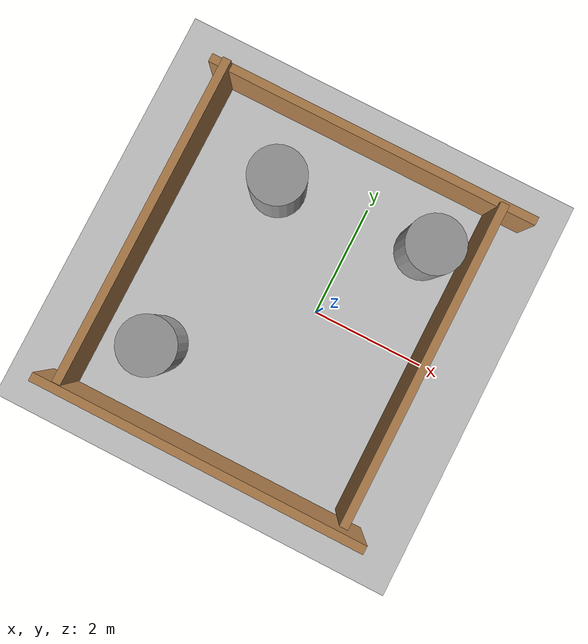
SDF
<sdf version="1.6">
 <world name="default">
  <light name="sun" type="directional">
   <pose>0 0 10 0 -0 0</pose>
   <diffuse>0.8 0.8 0.8 1</diffuse>
   <specular>0.2 0.2 0.2 1</specular>
   <attenuation>
    <range>1000</range>
    <constant>0.9</constant>
    <linear>0.01</linear>
    <quadratic>0.001</quadratic>
   </attenuation>
   <direction>0.5 0.1 -0.9</direction>
  </light>
  <model name="ground_plane">
   <static>1</static>
   <link name="link">
    <collision name="collision">
     <geometry><plane><normal>0 0 1</normal><size>100 100</size></plane></geometry>
     <surface><friction><ode><mu>100</mu><mu2>50</mu2></ode></friction></surface>
    </collision>
    <visual name="visual">
     <cast_shadows>0</cast_shadows>
     <geometry><plane><normal>0 0 1</normal><size>100 100</size></plane></geometry>
     <material>
      <script><uri>file://media/materials/scripts/gazebo.material</uri><name>Gazebo/Grey</name></script>
     </material>
    </visual>
    <velocity_decay><linear>0</linear><angular>0</angular></velocity_decay>
   </link>
  </model>
  <physics name="default_physics" default="0" type="ode">
   <max_step_size>0.01</max_step_size>
   <real_time_factor>1</real_time_factor>
   <real_time_update_rate>100</real_time_update_rate>
  </physics>
  <scene><ambient>0.4 0.4 0.4 1</ambient><background>0.7 0.7 0.7 1</background><shadows>1</shadows></scene>
  <gravity>0 0 -9.8</gravity>
  <magnetic_field>6e-06 2.3e-05 -4.2e-05</magnetic_field>
  <atmosphere type="adiabatic"/>
  <spherical_coordinates>
   <surface_model>EARTH_WGS84</surface_model>
   <latitude_deg>0</latitude_deg>
   <longitude_deg>0</longitude_deg>
   <elevation>0</elevation>
   <heading_deg>0</heading_deg>
  </spherical_coordinates>
  <model name="turtlebot3_square_1">
   <link name="Wall_0">
    <pose>-0.451745 2.8847 0 0 -0 0</pose>
    <inertial>
     <inertia><ixx>nan</ixx><ixy>0</ixy><ixz>0</ixz><iyy>nan</iyy><iyz>0</iyz><izz>nan</izz></inertia>
     <mass>0</mass>
    </inertial>
    <visual name="Wall_0_Visual">
     <pose>0 0 0.25 0 -0 0</pose>
     <geometry><box><size>5.97083 0.15 0.990577</size></box></geometry>
     <material>
      <script><uri>file://media/materials/scripts/gazebo.material</uri><name>Gazebo/Wood</name></script>
      <ambient>1 1 1 1</ambient>
      <diffuse>1 1 1 1</diffuse>
      <specular>0.2 0.2 0.2 1</specular>
      <emissive>0 0 0 1</emissive>
     </material>
    </visual>
    <collision name="Wall_0_Collision">
     <pose>0 0 0.25 0 -0 0</pose>
     <geometry><box><size>5.97083 0.15 0.990577</size></box></geometry>
     <surface>
      <friction>
       <ode><mu>1</mu><mu2>1</mu2><fdir1>0 0 0</fdir1><slip1>0</slip1><slip2>0</slip2></ode>
       <torsional>
        <coefficient>1</coefficient>
        <patch_radius>0</patch_radius>
        <surface_radius>0</surface_radius>
        <use_patch_radius>1</use_patch_radius>
        <ode><slip>0</slip></ode>
       </torsional>
      </friction>
      <bounce><restitution_coefficient>0</restitution_coefficient><threshold>1e+06</threshold></bounce>
      <contact>
       <collide_without_contact>0</collide_without_contact>
       <collide_without_contact_bitmask>1</collide_without_contact_bitmask>
       <collide_bitmask>1</collide_bitmask>
       <ode>
        <soft_cfm>0</soft_cfm>
        <soft_erp>0.2</soft_erp>
        <kp>1e+13</kp>
        <kd>1</kd>
        <max_vel>0.01</max_vel>
        <min_depth>0</min_depth>
       </ode>
       <bullet>
        <split_impulse>1</split_impulse>
        <split_impulse_penetration_threshold>-0.01</split_impulse_penetration_threshold>
        <soft_cfm>0</soft_cfm>
        <soft_erp>0.2</soft_erp>
        <kp>1e+13</kp>
        <kd>1</kd>
       </bullet>
      </contact>
     </surface>
    </collision>
   </link>
   <link name="Wall_2">
    <pose>-3.1364 4e-06 0.151186 0 0 -1.5708</pose>
    <inertial>
     <inertia><ixx>nan</ixx><ixy>0</ixy><ixz>0</ixz><iyy>nan</iyy><iyz>0</iyz><izz>nan</izz></inertia>
     <mass>0</mass>
    </inertial>
    <visual name="Wall_2_Visual">
     <pose>0 0 0.25 0 -0 0</pose>
     <geometry><box><size>5.87292 0.15 0.977738</size></box></geometry>
     <material>
      <script><uri>file://media/materials/scripts/gazebo.material</uri><name>Gazebo/Wood</name></script>
      <ambient>1 1 1 1</ambient>
      <diffuse>1 1 1 1</diffuse>
      <specular>0.2 0.2 0.2 1</specular>
      <emissive>0 0 0 1</emissive>
     </material>
    </visual>
    <collision name="Wall_2_Collision">
     <pose>0 0 0.25 0 -0 0</pose>
     <geometry><box><size>5.87292 0.15 0.977738</size></box></geometry>
     <surface>
      <friction>
       <ode><mu>1</mu><mu2>1</mu2><fdir1>0 0 0</fdir1><slip1>0</slip1><slip2>0</slip2></ode>
       <torsional>
        <coefficient>1</coefficient>
        <patch_radius>0</patch_radius>
        <surface_radius>0</surface_radius>
        <use_patch_radius>1</use_patch_radius>
        <ode><slip>0</slip></ode>
       </torsional>
      </friction>
      <bounce><restitution_coefficient>0</restitution_coefficient><threshold>1e+06</threshold></bounce>
      <contact>
       <collide_without_contact>0</collide_without_contact>
       <collide_without_contact_bitmask>1</collide_without_contact_bitmask>
       <collide_bitmask>1</collide_bitmask>
       <ode>
        <soft_cfm>0</soft_cfm>
        <soft_erp>0.2</soft_erp>
        <kp>1e+13</kp>
        <kd>1</kd>
        <max_vel>0.01</max_vel>
        <min_depth>0</min_depth>
       </ode>
       <bullet>
        <split_impulse>1</split_impulse>
        <split_impulse_penetration_threshold>-0.01</split_impulse_penetration_threshold>
        <soft_cfm>0</soft_cfm>
        <soft_erp>0.2</soft_erp>
        <kp>1e+13</kp>
        <kd>1</kd>
       </bullet>
      </contact>
     </surface>
    </collision>
   </link>
   <link name="Wall_3">
    <pose>-0.587978 -3.02752 0 0 -0 0</pose>
    <inertial>
     <inertia><ixx>nan</ixx><ixy>0</ixy><ixz>0</ixz><iyy>nan</iyy><iyz>0</iyz><izz>nan</izz></inertia>
     <mass>0</mass>
    </inertial>
    <visual name="Wall_3_Visual">
     <pose>0 0 0.25 0 -0 0</pose>
     <geometry><box><size>5.93047 0.15 1.22788</size></box></geometry>
     <material>
      <script><uri>file://media/materials/scripts/gazebo.material</uri><name>Gazebo/Wood</name></script>
      <ambient>1 1 1 1</ambient>
      <diffuse>1 1 1 1</diffuse>
      <specular>0.2 0.2 0.2 1</specular>
      <emissive>0 0 0 1</emissive>
     </material>
    </visual>
    <collision name="Wall_3_Collision">
     <pose>0 0 0.25 0 -0 0</pose>
     <geometry><box><size>5.93047 0.15 1.22788</size></box></geometry>
     <surface>
      <friction>
       <ode><mu>1</mu><mu2>1</mu2><fdir1>0 0 0</fdir1><slip1>0</slip1><slip2>0</slip2></ode>
       <torsional>
        <coefficient>1</coefficient>
        <patch_radius>0</patch_radius>
        <surface_radius>0</surface_radius>
        <use_patch_radius>1</use_patch_radius>
        <ode><slip>0</slip></ode>
       </torsional>
      </friction>
      <bounce><restitution_coefficient>0</restitution_coefficient><threshold>1e+06</threshold></bounce>
      <contact>
       <collide_without_contact>0</collide_without_contact>
       <collide_without_contact_bitmask>1</collide_without_contact_bitmask>
       <collide_bitmask>1</collide_bitmask>
       <ode>
        <soft_cfm>0</soft_cfm>
        <soft_erp>0.2</soft_erp>
        <kp>1e+13</kp>
        <kd>1</kd>
        <max_vel>0.01</max_vel>
        <min_depth>0</min_depth>
       </ode>
       <bullet>
        <split_impulse>1</split_impulse>
        <split_impulse_penetration_threshold>-0.01</split_impulse_penetration_threshold>
        <soft_cfm>0</soft_cfm>
        <soft_erp>0.2</soft_erp>
        <kp>1e+13</kp>
        <kd>1</kd>
       </bullet>
      </contact>
     </surface>
    </collision>
   </link>
   <link name="Wall_4">
    <pose>1.925 0 0 0 -0 1.5708</pose>
    <inertial>
     <inertia><ixx>nan</ixx><ixy>0</ixy><ixz>0</ixz><iyy>nan</iyy><iyz>0</iyz><izz>nan</izz></inertia>
     <mass>0</mass>
    </inertial>
    <visual name="Wall_4_Visual">
     <pose>0 0 0.25 0 -0 0</pose>
     <geometry><box><size>5.75812 0.15 1.20534</size></box></geometry>
     <material>
      <script><uri>file://media/materials/scripts/gazebo.material</uri><name>Gazebo/Wood</name></script>
      <ambient>1 1 1 1</ambient>
      <diffuse>1 1 1 1</diffuse>
      <specular>0.2 0.2 0.2 1</specular>
      <emissive>0 0 0 1</emissive>
     </material>
    </visual>
    <collision name="Wall_4_Collision">
     <pose>0 0 0.25 0 -0 0</pose>
     <geometry><box><size>5.75812 0.15 1.20534</size></box></geometry>
     <surface>
      <friction>
       <ode><mu>1</mu><mu2>1</mu2><fdir1>0 0 0</fdir1><slip1>0</slip1><slip2>0</slip2></ode>
       <torsional>
        <coefficient>1</coefficient>
        <patch_radius>0</patch_radius>
        <surface_radius>0</surface_radius>
        <use_patch_radius>1</use_patch_radius>
        <ode><slip>0</slip></ode>
       </torsional>
      </friction>
      <bounce><restitution_coefficient>0</restitution_coefficient><threshold>1e+06</threshold></bounce>
      <contact>
       <collide_without_contact>0</collide_without_contact>
       <collide_without_contact_bitmask>1</collide_without_contact_bitmask>
       <collide_bitmask>1</collide_bitmask>
       <ode>
        <soft_cfm>0</soft_cfm>
        <soft_erp>0.2</soft_erp>
        <kp>1e+13</kp>
        <kd>1</kd>
        <max_vel>0.01</max_vel>
        <min_depth>0</min_depth>
       </ode>
       <bullet>
        <split_impulse>1</split_impulse>
        <split_impulse_penetration_threshold>-0.01</split_impulse_penetration_threshold>
        <soft_cfm>0</soft_cfm>
        <soft_erp>0.2</soft_erp>
        <kp>1e+13</kp>
        <kd>1</kd>
       </bullet>
      </contact>
     </surface>
    </collision>
   </link>
   <static>1</static>
   <pose>-0.034741 0.025906 0 0 -0 0</pose>
  </model>
  <model name="unit_cylinder_3_clone_0">
   <pose>-1.56643 1.61157 0.49912 0 -0 0</pose>
   <link name="link">
    <inertial>
     <mass>1</mass>
     <inertia><ixx>1</ixx><ixy>0</ixy><ixz>0</ixz><iyy>1</iyy><iyz>0</iyz><izz>1</izz></inertia>
    </inertial>
    <collision name="collision">
     <geometry><cylinder><radius>0.5</radius><length>1</length></cylinder></geometry>
    </collision>
    <visual name="visual">
     <geometry><cylinder><radius>0.5</radius><length>1</length></cylinder></geometry>
     <material>
      <script><uri>file://media/materials/scripts/gazebo.material</uri><name>Gazebo/Grey</name></script>
     </material>
    </visual>
    <velocity_decay><linear>0</linear><angular>0</angular></velocity_decay>
   </link>
   <static>0</static>
  </model>
  <model name="unit_cylinder_3_clone_clone">
   <pose>-2.16008 -1.71837 0.49912 0 -0 0</pose>
   <link name="link">
    <inertial>
     <mass>1</mass>
     <inertia><ixx>1</ixx><ixy>0</ixy><ixz>0</ixz><iyy>1</iyy><iyz>0</iyz><izz>1</izz></inertia>
    </inertial>
    <collision name="collision">
     <geometry><cylinder><radius>0.5</radius><length>1</length></cylinder></geometry>
    </collision>
    <visual name="visual">
     <geometry><cylinder><radius>0.5</radius><length>1</length></cylinder></geometry>
     <material>
      <script><uri>file://media/materials/scripts/gazebo.material</uri><name>Gazebo/Grey</name></script>
     </material>
    </visual>
    <velocity_decay><linear>0</linear><angular>0</angular></velocity_decay>
   </link>
   <static>0</static>
  </model>
  <model name="unit_cylinder_3_clone_clone_0">
   <pose>1.16894 1.77464 0.49912 0 -0 0</pose>
   <link name="link">
    <inertial>
     <mass>1</mass>
     <inertia><ixx>1</ixx><ixy>0</ixy><ixz>0</ixz><iyy>1</iyy><iyz>0</iyz><izz>1</izz></inertia>
    </inertial>
    <collision name="collision">
     <geometry><cylinder><radius>0.5</radius><length>1</length></cylinder></geometry>
    </collision>
    <visual name="visual">
     <geometry><cylinder><radius>0.5</radius><length>1</length></cylinder></geometry>
     <material>
      <script><uri>file://media/materials/scripts/gazebo.material</uri><name>Gazebo/Grey</name></script>
     </material>
    </visual>
    <velocity_decay><linear>0</linear><angular>0</angular></velocity_decay>
   </link>
   <static>0</static>
  </model>
 </world>
</sdf>
